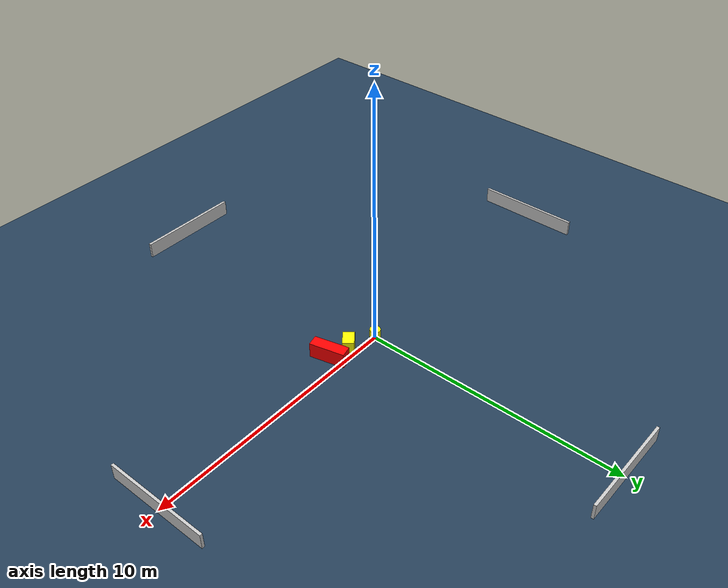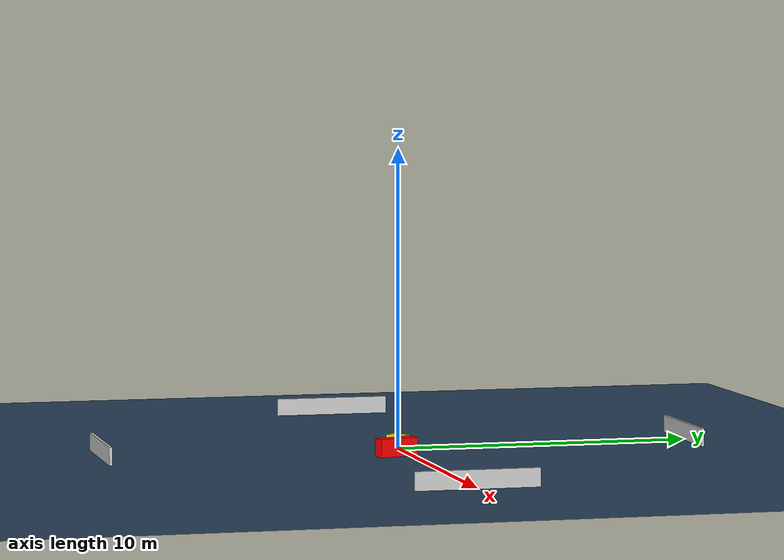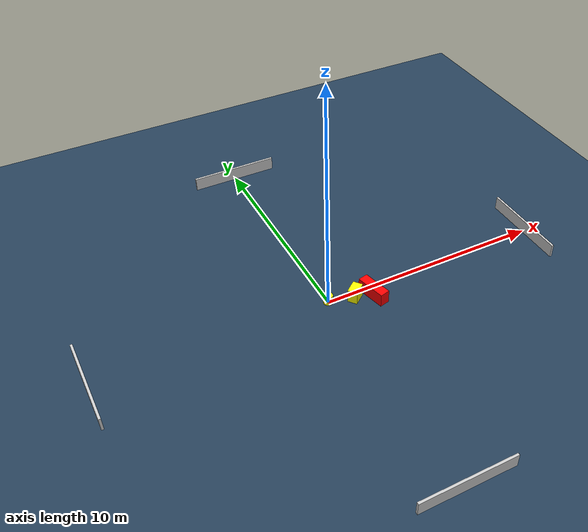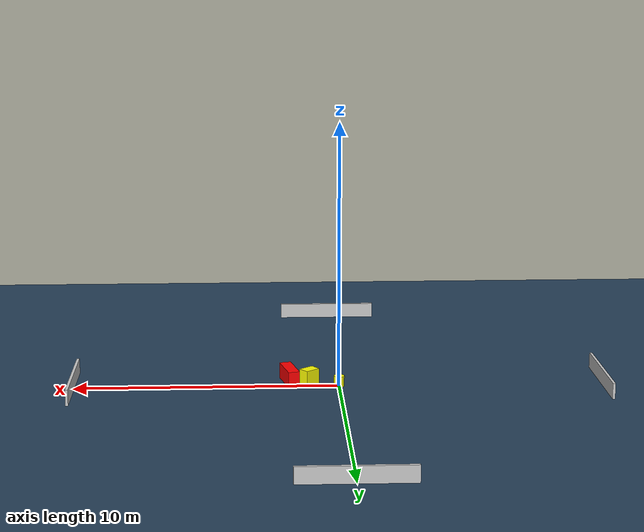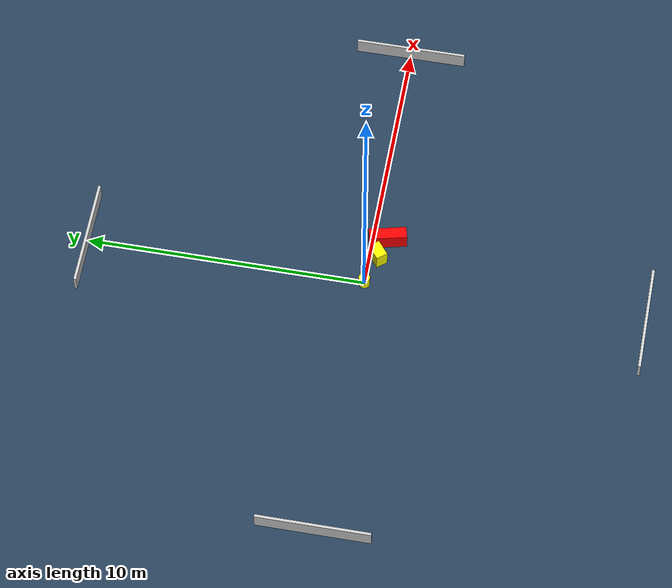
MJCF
<?xml version="1.0" ?>
<mujoco model="generated_environment">
  <option timestep="0.01" integrator="RK4" cone="elliptic"/>
  <default>
    <geom density="1"/>
  </default>
  <asset>
    <texture builtin="gradient" height="3072" name="skybox" rgb1="0.3 0.5 0.7" rgb2="0 0 0" type="skybox" width="512"/>
    <texture builtin="checker" height="300" name="groundplane" rgb1="0.2 0.3 0.4" rgb2="0.1 0.2 0.3" type="2d" width="300"/>
    <material name="groundplane" reflectance="0.2" texrepeat="5 5" texture="groundplane"/>
  </asset>
  <worldbody>
    <light dir="0 0 -1" directional="true" pos="0 0 1.5"/>
    <geom condim="3" friction="0.5 0.005 0.001" material="groundplane" name="floor" pos="0 0 0" size="0 0 0.05" type="plane"/>
    <body name="walls">
      <geom name="wall_1" condim="4" pos="-10.0 0.0 0.3" rgba="0.800000011920929 0.800000011920929 0.800000011920929 1.0" size="0.05 2.0 0.3" type="box"/>
      <geom name="wall_2" condim="4" pos="10.0 0.0 0.3" rgba="0.800000011920929 0.800000011920929 0.800000011920929 1.0" size="0.05 2.0 0.3" type="box"/>
      <geom name="wall_3" condim="4" pos="0.0 -10.0 0.3" rgba="0.800000011920929 0.800000011920929 0.800000011920929 1.0" size="2.0 0.05 0.3" type="box"/>
      <geom name="wall_4" condim="4" pos="0.0 10.0 0.3" rgba="0.800000011920929 0.800000011920929 0.800000011920929 1.0" size="2.0 0.05 0.3" type="box"/>
    </body>
    <body name="robot">
      <joint name="joint_x" type="slide" pos="0 0 0" axis="1 0 0"/>
      <joint name="joint_y" type="slide" pos="0 0 0" axis="0 1 0"/>
      <geom name="robot" type="cylinder" pos="0.0 0.0 0.2" size="0.2 0.2 0.0" mass="5.0" friction="1.0 0.005 0.0001" condim="4" rgba="1.0 1.0 0.0 1.0"/>
    </body>
    <body name="obstacle_1_movable">
      <geom name="obstacle_1_movable" condim="4" pos="1.1072974026450189 -0.2912238062598937 0.3" euler="0 0 128.67440294031908" friction="0.0 0.005 0.001" rgba="1.0 1.0 0.0 1.0" size="0.21372654872716365 0.30709325477294364 0.3" type="box" mass="0.1"/>
      <joint type="free"/>
    </body>
    <body name="obstacle_2_static">
      <geom name="obstacle_2_static" condim="4" pos="1.8551888839150144 -0.5236022403251315 0.3" euler="0 0 283.5235510001844" friction="0.0 0.005 0.001" rgba="1.0 0.0 0.0 1.0" size="0.6718667136282358 0.21895746805050187 0.3" type="box"/>
    </body>
  </worldbody>
  <actuator>
    <motor name="actuator_x" joint="joint_x" gear="1" ctrlrange="-1 1"/>
    <motor name="actuator_y" joint="joint_y" gear="1" ctrlrange="-1 1"/>
  </actuator>
</mujoco>
